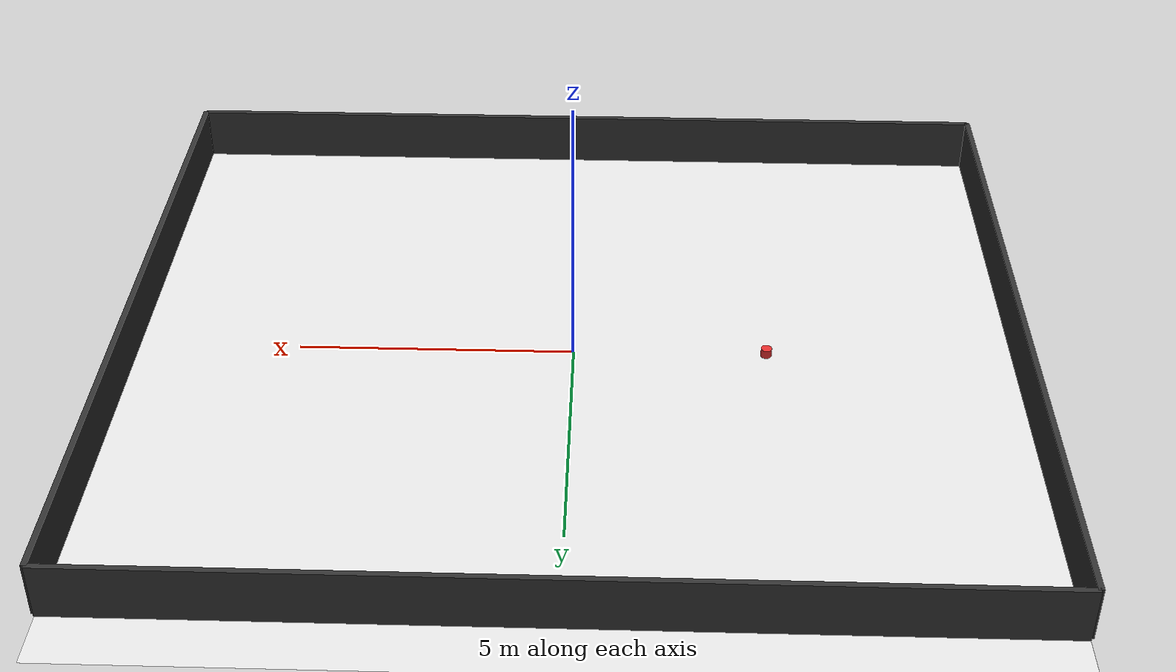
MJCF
<mujoco model="nav_room_formation">
  <option timestep="0.01" gravity="0 0 -9.81" impratio="0.1"/>
  <visual>
    <map znear="0.01" zfar="50"/>
  </visual>

  <worldbody>
    <!-- 地板 -->
    <geom name="floor" type="plane" size="8 8 0.1" rgba="0.9 0.9 0.9 1"/>

    <!-- 内墙：16m x 14m (进一步扩大房间以容纳20个机器人，提供更多空间) -->
    <geom name="wall_n" type="box" pos="0 7 0.5"  size="8 0.05 0.5" rgba="0.2 0.2 0.2 1" contype="1" conaffinity="1"/>
    <geom name="wall_s" type="box" pos="0 -7 0.5" size="8 0.05 0.5" rgba="0.2 0.2 0.2 1" contype="1" conaffinity="1"/>
    <geom name="wall_e" type="box" pos="8 0 0.5"  size="0.05 7 0.5" rgba="0.2 0.2 0.2 1" contype="1" conaffinity="1"/>
    <geom name="wall_w" type="box" pos="-8 0 0.5" size="0.05 7 0.5" rgba="0.2 0.2 0.2 1" contype="1" conaffinity="1"/>

    <!-- 无障碍物版本 - 用于编队任务 -->

    <!-- 机器人：支持20个机器人 (robot_0 到 robot_19) -->
    <!-- 初始位置将在运行时设置，这里只是占位符 -->
    <!-- 使用HSV颜色空间生成不同颜色的机器人 -->
    <body name="robot_0" pos="-3.5 0.0 0.1">
      <freejoint/>
      <inertial pos="0 0 0" mass="2.0" diaginertia="0.1 0.1 0.1"/>
      <geom type="cylinder" size="0.10 0.08" rgba="0.90 0.18 0.18 1" contype="1" conaffinity="1" friction="1.0 0.1 0.1"/>
    </body>
    <body name="robot_1" pos="-3.5 0.0 0.1">
      <freejoint/>
      <inertial pos="0 0 0" mass="2.0" diaginertia="0.1 0.1 0.1"/>
      <geom type="cylinder" size="0.10 0.08" rgba="0.90 0.54 0.18 1" contype="1" conaffinity="1" friction="1.0 0.1 0.1"/>
    </body>
    <body name="robot_2" pos="-3.5 0.0 0.1">
      <freejoint/>
      <inertial pos="0 0 0" mass="2.0" diaginertia="0.1 0.1 0.1"/>
      <geom type="cylinder" size="0.10 0.08" rgba="0.90 0.90 0.18 1" contype="1" conaffinity="1" friction="1.0 0.1 0.1"/>
    </body>
    <body name="robot_3" pos="-3.5 0.0 0.1">
      <freejoint/>
      <inertial pos="0 0 0" mass="2.0" diaginertia="0.1 0.1 0.1"/>
      <geom type="cylinder" size="0.10 0.08" rgba="0.54 0.90 0.18 1" contype="1" conaffinity="1" friction="1.0 0.1 0.1"/>
    </body>
    <body name="robot_4" pos="-3.5 0.0 0.1">
      <freejoint/>
      <inertial pos="0 0 0" mass="2.0" diaginertia="0.1 0.1 0.1"/>
      <geom type="cylinder" size="0.10 0.08" rgba="0.18 0.90 0.18 1" contype="1" conaffinity="1" friction="1.0 0.1 0.1"/>
    </body>
    <body name="robot_5" pos="-3.5 0.0 0.1">
      <freejoint/>
      <inertial pos="0 0 0" mass="2.0" diaginertia="0.1 0.1 0.1"/>
      <geom type="cylinder" size="0.10 0.08" rgba="0.18 0.90 0.54 1" contype="1" conaffinity="1" friction="1.0 0.1 0.1"/>
    </body>
    <body name="robot_6" pos="-3.5 0.0 0.1">
      <freejoint/>
      <inertial pos="0 0 0" mass="2.0" diaginertia="0.1 0.1 0.1"/>
      <geom type="cylinder" size="0.10 0.08" rgba="0.18 0.90 0.90 1" contype="1" conaffinity="1" friction="1.0 0.1 0.1"/>
    </body>
    <body name="robot_7" pos="-3.5 0.0 0.1">
      <freejoint/>
      <inertial pos="0 0 0" mass="2.0" diaginertia="0.1 0.1 0.1"/>
      <geom type="cylinder" size="0.10 0.08" rgba="0.18 0.54 0.90 1" contype="1" conaffinity="1" friction="1.0 0.1 0.1"/>
    </body>
    <body name="robot_8" pos="-3.5 0.0 0.1">
      <freejoint/>
      <inertial pos="0 0 0" mass="2.0" diaginertia="0.1 0.1 0.1"/>
      <geom type="cylinder" size="0.10 0.08" rgba="0.18 0.18 0.90 1" contype="1" conaffinity="1" friction="1.0 0.1 0.1"/>
    </body>
    <body name="robot_9" pos="-3.5 0.0 0.1">
      <freejoint/>
      <inertial pos="0 0 0" mass="2.0" diaginertia="0.1 0.1 0.1"/>
      <geom type="cylinder" size="0.10 0.08" rgba="0.54 0.18 0.90 1" contype="1" conaffinity="1" friction="1.0 0.1 0.1"/>
    </body>
    <body name="robot_10" pos="-3.5 0.0 0.1">
      <freejoint/>
      <inertial pos="0 0 0" mass="2.0" diaginertia="0.1 0.1 0.1"/>
      <geom type="cylinder" size="0.10 0.08" rgba="0.90 0.18 0.90 1" contype="1" conaffinity="1" friction="1.0 0.1 0.1"/>
    </body>
    <body name="robot_11" pos="-3.5 0.0 0.1">
      <freejoint/>
      <inertial pos="0 0 0" mass="2.0" diaginertia="0.1 0.1 0.1"/>
      <geom type="cylinder" size="0.10 0.08" rgba="0.90 0.18 0.54 1" contype="1" conaffinity="1" friction="1.0 0.1 0.1"/>
    </body>
    <body name="robot_12" pos="-3.5 0.0 0.1">
      <freejoint/>
      <inertial pos="0 0 0" mass="2.0" diaginertia="0.1 0.1 0.1"/>
      <geom type="cylinder" size="0.10 0.08" rgba="0.72 0.36 0.18 1" contype="1" conaffinity="1" friction="1.0 0.1 0.1"/>
    </body>
    <body name="robot_13" pos="-3.5 0.0 0.1">
      <freejoint/>
      <inertial pos="0 0 0" mass="2.0" diaginertia="0.1 0.1 0.1"/>
      <geom type="cylinder" size="0.10 0.08" rgba="0.36 0.72 0.18 1" contype="1" conaffinity="1" friction="1.0 0.1 0.1"/>
    </body>
    <body name="robot_14" pos="-3.5 0.0 0.1">
      <freejoint/>
      <inertial pos="0 0 0" mass="2.0" diaginertia="0.1 0.1 0.1"/>
      <geom type="cylinder" size="0.10 0.08" rgba="0.18 0.72 0.36 1" contype="1" conaffinity="1" friction="1.0 0.1 0.1"/>
    </body>
    <body name="robot_15" pos="-3.5 0.0 0.1">
      <freejoint/>
      <inertial pos="0 0 0" mass="2.0" diaginertia="0.1 0.1 0.1"/>
      <geom type="cylinder" size="0.10 0.08" rgba="0.18 0.36 0.72 1" contype="1" conaffinity="1" friction="1.0 0.1 0.1"/>
    </body>
    <body name="robot_16" pos="-3.5 0.0 0.1">
      <freejoint/>
      <inertial pos="0 0 0" mass="2.0" diaginertia="0.1 0.1 0.1"/>
      <geom type="cylinder" size="0.10 0.08" rgba="0.72 0.18 0.36 1" contype="1" conaffinity="1" friction="1.0 0.1 0.1"/>
    </body>
    <body name="robot_17" pos="-3.5 0.0 0.1">
      <freejoint/>
      <inertial pos="0 0 0" mass="2.0" diaginertia="0.1 0.1 0.1"/>
      <geom type="cylinder" size="0.10 0.08" rgba="0.54 0.72 0.18 1" contype="1" conaffinity="1" friction="1.0 0.1 0.1"/>
    </body>
    <body name="robot_18" pos="-3.5 0.0 0.1">
      <freejoint/>
      <inertial pos="0 0 0" mass="2.0" diaginertia="0.1 0.1 0.1"/>
      <geom type="cylinder" size="0.10 0.08" rgba="0.18 0.54 0.72 1" contype="1" conaffinity="1" friction="1.0 0.1 0.1"/>
    </body>
    <body name="robot_19" pos="-3.5 0.0 0.1">
      <freejoint/>
      <inertial pos="0 0 0" mass="2.0" diaginertia="0.1 0.1 0.1"/>
      <geom type="cylinder" size="0.10 0.08" rgba="0.72 0.18 0.54 1" contype="1" conaffinity="1" friction="1.0 0.1 0.1"/>
    </body>
  </worldbody>
</mujoco>
